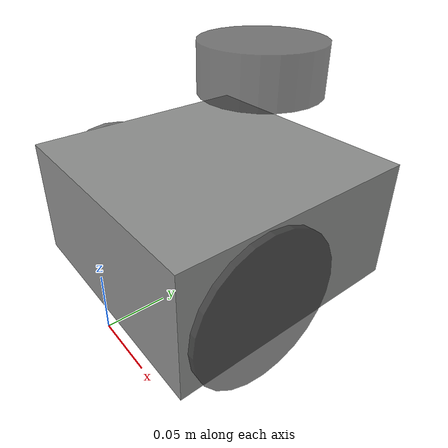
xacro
<?xml version="1.0"?>
<robot xmlns:xacro = "http://www.ros.org/wiki/xacro" name = "Robot">

    <xacro:include filename = "inertial.xacro"/>
    <xacro:include filename = "gazebo_control.xacro"/>

                                                        <!--    ALL DIMENSIONS    -->

                                                        <!-- MAIN BODY DIMENSIONS -->

    <xacro:property name = "main_body_length" value = "0.200"/>
    <xacro:property name = "main_body_breadth" value = "0.200"/>
    <xacro:property name = "main_body_height" value = "0.100"/>
    <xacro:property name = "main_body_mass" value = "0.300"/>
    <xacro:property name = "main_body_y_offset" value = "0.100"/>
    <xacro:property name = "main_body_joint_z_offset" value = "0.020"/>
    <xacro:property name = "main_body_z_offset" value = "0.050"/>

                                                        <!--  WHEEL DIMENSIONS  -->

    <xacro:property name = "wheel_dia" value = "0.120"/>
    <xacro:property name = "wheel_width" value = "0.005"/>
    <xacro:property name = "wheel_mass" value = "0.090"/>
    <xacro:property name = "wheel_x_offset" value = "0.1045"/>
    <xacro:property name = "wheel_y_offset" value = "0.065"/>

                                                            <!-- CASTER DIMENSIONS -->

    <xacro:property name = "caster_radius" value = "0.020"/>
    <xacro:property name = "caster_y_offset" value = "0.161"/>
    <xacro:property name = "caster_mass" value = "0.400"/>

                                                            <!-- LIDAR DIMENSIONS -->

    <xacro:property name = "lidar_y_offset" value = "0.150"/>
    <xacro:property name = "lidar_z_offset" value = "0.160"/>
    <xacro:property name = "lidar_mass" value = "0.050"/>

                                                            <!-- CAMERA DIMENSIONS -->

    <xacro:property name = "camera_y_offset" value = "0.200"/>
    <xacro:property name = "camera_z_offset" value = "0.050"/>

                                                            <!-- MATERIALS -->

    <material name = "gunmetal_grey">
        <color rgba = "0.5647 0.568627 0.5647 1.0"/>
    </material>

    <material name = "metallic_grey">
        <color rgba = "0.505882353 0.521568627 0.537254902 1.0"/>
    </material>

    <material name = "black">
        <color rgba = "0.254 0.254 0.254 0.7"/>
    </material>

                                                            <!-- BASE LINK -->

    <link name = "base_link"/>

                                                            <!-- MAIN BODY -->

    <joint name = "main_body_joint" type = "fixed">
        <parent link="base_link"/>
        <child link="main_body_link"/>
        <origin xyz="0.0 0.0 ${main_body_joint_z_offset}" rpy="0.0 0.0 0.0"/>
    </joint>

    <link name = "main_body_link" >
        <visual>
            <origin xyz="0.0 ${main_body_y_offset} ${main_body_z_offset}" rpy="0.0 0.0 0.0"/>
            <geometry>
                <box size="${main_body_length} ${main_body_breadth} ${main_body_height}"/>
            </geometry>
            <material name = "gunmetal_grey"/>
        </visual>
        <collision>
            <origin xyz="0.0 ${main_body_y_offset} ${main_body_z_offset}" rpy="0.0 0.0 0.0"/>
            <geometry>
                <box size="${main_body_length} ${main_body_breadth} ${main_body_height}"/>
            </geometry>
        </collision>
        <xacro:main_body_inertia mass = "${main_body_mass}" x = "0.200" y = "0.200" z = "0.100">
            <origin xyz="0.0 ${main_body_y_offset} ${main_body_z_offset}" rpy="0.0 0.0 0.0"/>
        </xacro:main_body_inertia>
    </link>

    <gazebo reference = "main_body_link">
        <material>Gazebo/GunmetalGrey</material>
    </gazebo>

                                                            <!--  WHEELS  -->

    <joint name="left_wheel_joint" type="continuous">
        <parent link="main_body_link"/>
        <child link="left_wh_link"/>
        <origin xyz="-${wheel_x_offset} ${wheel_y_offset} 0.04" rpy=" 0.0 -${pi/2} 0.0"/>
        <axis xyz = "0 0 1"/>
    </joint>

    <link name = "left_wh_link" >
        <visual>
            <origin xyz="0.0 0.0 0.0" rpy="0.0 0.0 0.0"/>
            <geometry>
                <cylinder radius="${wheel_dia/2}" length="${wheel_width}"/>
            </geometry>
            <material name = "black" />
        </visual>
        <collision>
            <origin xyz="0.0 0.0 0.0" rpy="0.0 0.0 0.0"/>
            <geometry>
                <cylinder radius="${wheel_dia/2}" length="${wheel_width}"/>
            </geometry>
        </collision>
        <xacro:wheel_inertia mass = "${wheel_mass}" length = "${wheel_width}" radius="${wheel_dia/2}">
            <origin xyz="0 0 0" rpy="0.0 ${pi/2} 0.0"/>
        </xacro:wheel_inertia>
    </link>

    <gazebo reference="left_wh_link">
        <material>Gazebo/Black</material>
        <dynamics damping="0.01" friction="0.1"/>
        <surface>
            <friction>
                <ode>
                    <mu>1.50</mu>
                    <mu2>1.50</mu2>
                </ode>
            </friction>
        </surface>
    </gazebo>

    <joint name="right_wheel_joint" type="continuous">
        <parent link="main_body_link"/>
        <child link="right_wh_link"/>
        <origin xyz="${wheel_x_offset} ${wheel_y_offset} 0.04" rpy=" 0.0 ${pi/2} 0.0"/>
        <axis xyz="0.0 0.0 -1.0"/>
    </joint>

    <link name = "right_wh_link" >
        <visual>
            <geometry>
                <cylinder radius="${wheel_dia/2}" length="${wheel_width}"/>
            </geometry>
            <material name = "black" />
        </visual>
        <collision>
            <origin xyz="0.0 0.0 0.0" rpy="0.0 0.0 0.0"/>
            <geometry>
                <cylinder radius="${wheel_dia/2}" length="${wheel_width}"/>
            </geometry>
        </collision>
        <xacro:wheel_inertia mass = "${wheel_mass}" length = "${wheel_width}" radius="${wheel_dia/2}">
            <origin xyz="0 0 0" rpy="0.0 ${pi/2} 0.0"/>
        </xacro:wheel_inertia>
    </link>

    <gazebo reference="right_wh_link">
        <material>Gazebo/Black</material>
        <dynamics damping="0.01" friction="0.1"/>
        <surface>
            <friction>
                <ode>
                    <mu>1.50</mu>
                    <mu2>1.50</mu2>
                </ode>
            </friction>
        </surface>
    </gazebo>

                                                                <!-- CASTER WHEEL -->

    <joint name = "caster_joint" type = "fixed">
        <parent link="main_body_link"/>
        <child link="caster_link"/>
        <origin xyz="0.0 ${caster_y_offset} 0.0" rpy="0.0 0.0 0.0"/>
    </joint>

    <link name = "caster_link" >
        <visual>
            <geometry>
                <sphere radius="${caster_radius}"/>
            </geometry>
            <material name = "metallic_grey"/>
        </visual>
        <collision>
            <geometry>
                <sphere radius="${caster_radius}"/>
            </geometry>
        </collision>
        <xacro:inertial_sphere mass="${caster_mass}" radius="${caster_radius}">
            <origin xyz="0 0 0" rpy="0 0 0"/>
        </xacro:inertial_sphere>
    </link>

    <gazebo reference = "caster_link">
        <material>Gazebo/MettalicGrey</material>
        <mu1 value="0.01"/>
        <mu2 value="0.01"/>
    </gazebo>

                                                                <!-- LIDAR -->

    <joint name="laser_joint" type="fixed">
        <parent link="main_body_link"/>
        <child link="laser_frame"/>
        <origin xyz="0 ${lidar_y_offset} ${lidar_z_offset}" rpy="0 0 0"/>
    </joint>

    <link name="laser_frame">
        <visual>
            <geometry>
                <cylinder radius="0.05" length="0.04"/>
            </geometry>
            <material name="black"/>
        </visual>
        <collision>
            <geometry>
                <cylinder radius="0.05" length="0.04"/>
            </geometry>
        </collision>
        <xacro:inertial_cylinder mass="${lidar_mass}" length="0.04" radius="0.05">
            <origin xyz="0 0 0" rpy="0 0 0"/>
        </xacro:inertial_cylinder>
    </link>

    <gazebo reference="laser_frame">
        <material>Gazebo/Black</material>

        <sensor name="laser" type="ray">
            <pose> 0 0 0 0 0 0 </pose>
            <visualize>true</visualize>
            <update_rate>100</update_rate>
            <ray>
                <scan>
                    <horizontal>
                        <samples>360</samples>
                        <min_angle>-3.14</min_angle>
                        <max_angle>3.14</max_angle>
                    </horizontal>
                </scan>
                <range>
                    <min>0.2</min>
                    <max>12</max>
                </range>
            </ray>
            <plugin name="laser_controller" filename="libgazebo_ros_ray_sensor.so">
                <ros>
                    <argument>~/out:=scan</argument>
                </ros>
                <output_type>sensor_msgs/LaserScan</output_type>
                <frame_name>laser_frame</frame_name>
            </plugin>
        </sensor>
    </gazebo>

                                                                    <!-- CAMERA -->

    <joint name="camera_joint" type="fixed">
        <parent link="main_body_link"/>
        <child link="camera_link"/>
        <origin xyz="0.0 ${camera_y_offset} ${camera_z_offset}" rpy="0 0 0"/>
    </joint>

    <link name="camera_link">
        <visual>
            <geometry>
                <box size="0.03 0.010 0.03"/>
            </geometry>
            <material name="black"/>
        </visual>
    </link>

    <joint name="camera_optical_joint" type="fixed">
        <parent link="camera_link"/>
        <child link="camera_link_optical"/>
        <origin xyz="0 0 0" rpy="-${pi/2} 0 0"/>
    </joint>

    <link name="camera_link_optical">
    </link>

    <gazebo reference="camera_link">
        <material>Gazebo/Black</material>

        <sensor name="camera" type="camera">
            <pose> 0 0 0 0 0 0 </pose>
            <visualize>true</visualize>
            <update_rate>10</update_rate>
            <camera>
                <horizontal_fov>1.089</horizontal_fov>
                <image>
                    <format>R8G8B8</format>
                    <width>640</width>
                    <height>480</height>
                </image>
                <clip>
                    <near>0.05</near>
                    <far>8.0</far>
                </clip>
            </camera>
            <plugin name="camera_controller" filename="libgazebo_ros_camera.so">
                <frame_name>camera_link_optical</frame_name>
            </plugin>
        </sensor>
    </gazebo>

</robot>

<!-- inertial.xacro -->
<robot xmlns:xacro = "http://www.ros.org/wiki/xacro" name = "Ogmen">

    <xacro:macro name = "main_body_inertia" params = "mass x y z *origin">
        <inertial>
            <xacro:insert_block name = "origin"/>
            <mass value="${mass}"/>
            <inertia ixx="${(1/12) * mass * (y*y+z*z)}" ixy="0.0" ixz="0.0"
                    iyy="${(1/12) * mass * (x*x+z*z)}" iyz="0.0"
                    izz="${(1/12) * mass * (x*x+y*y)}" />
        </inertial>
    </xacro:macro>

    <xacro:macro name = "wheel_inertia" params="mass length radius *origin">
        <inertial>
            <xacro:insert_block name="origin"/>
            <mass value="${mass}"/>
            <inertia ixx="${(1/2) * mass * (radius*radius)}" ixy="0.0" ixz="0.0"
                    iyy="${(1/12) * mass * (3*radius*radius + length*length)}" iyz="0.0"
                    izz="${(1/12) * mass * (3*radius*radius + length*length)}" />
        </inertial>
    </xacro:macro>

    <xacro:macro name="inertial_sphere" params="mass radius *origin">
        <inertial>
            <xacro:insert_block name="origin"/>
            <mass value="${mass}" />
            <inertia ixx="${(2/5) * mass * (radius*radius)}" ixy="0.0" ixz="0.0"
                    iyy="${(2/5) * mass * (radius*radius)}" iyz="0.0"
                    izz="${(2/5) * mass * (radius*radius)}" />
        </inertial>
    </xacro:macro>

    <xacro:macro name = "inertial_cylinder" params="mass length radius *origin">
        <inertial>
            <xacro:insert_block name="origin"/>
            <mass value="${mass}"/>
            <inertia ixx="${(1/12) * mass * (3*radius*radius + length*length)}" ixy="0.0" ixz="0.0"
                    iyy="${(1/12) * mass * (3*radius*radius + length*length)}" iyz="0.0"
                    izz="${(1/2) * mass * (radius*radius)}" />
        </inertial>
    </xacro:macro>

</robot>
